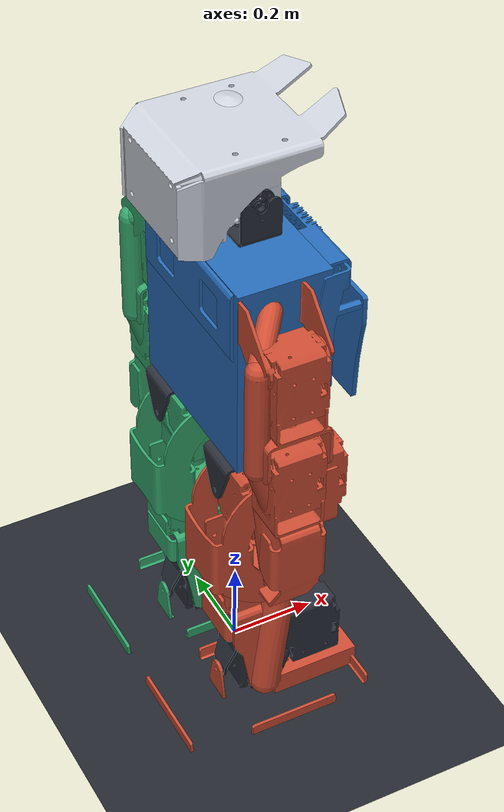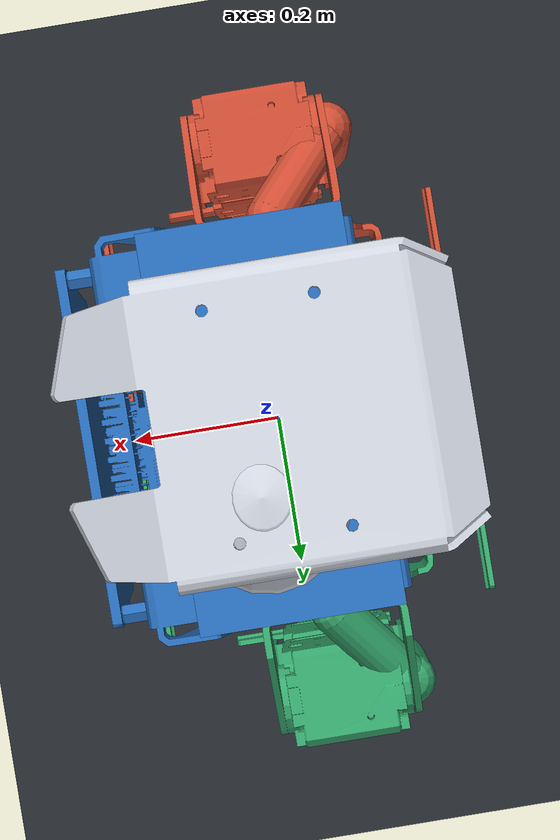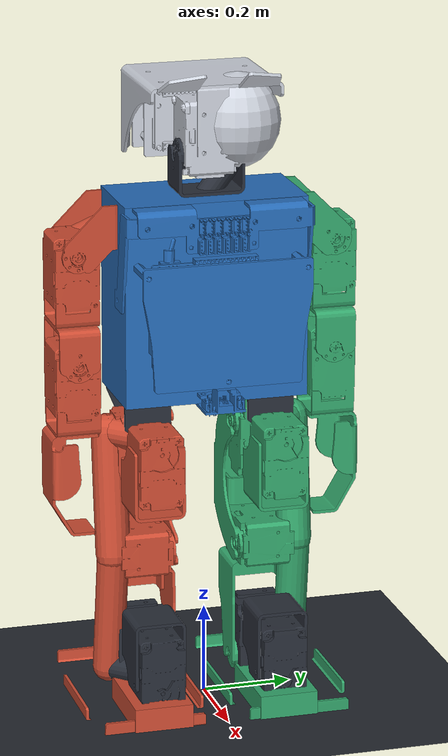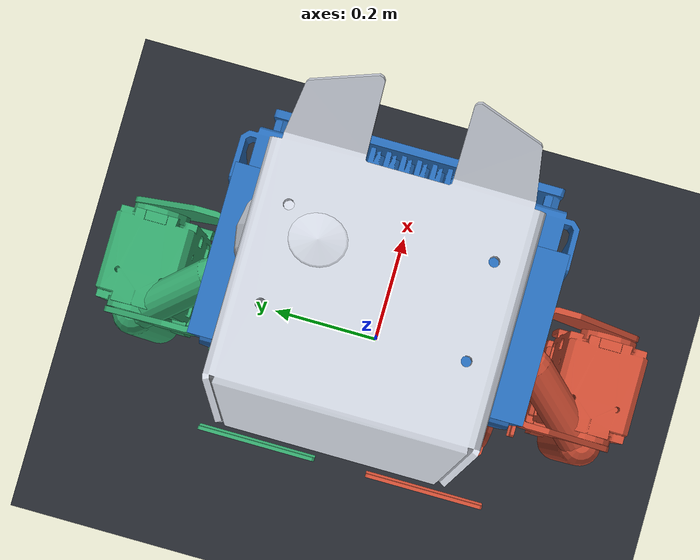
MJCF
<mujoco model="humanoid_v4_grounded_fixed">
  <compiler angle="degree" autolimits="true" coordinate="local"
            meshdir="meshes" inertiagrouprange="2 2"/>
  <option timestep="0.002" integrator="implicitfast" solver="Newton" iterations="80"
          gravity="0 0 -9.81" cone="elliptic"/>
  <include file="robot.xml"/>

  <worldbody>
    <body name="standing_carriage">
      <joint name="standing_vertical" type="slide" axis="0 0 1" limited="false" damping="0.1"/>
      <inertial pos="0 0 0" mass="0.000001"
                diaginertia="0.000000001 0.000000001 0.000000001"/>
    </body>
  </worldbody>

  <equality>
    <weld name="fixed_base" body1="torso" body2="standing_carriage"
          solref="0.002 1" solimp="0.99 0.999 0.0001"/>
  </equality>
</mujoco>

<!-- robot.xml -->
<mujocoinclude>
  <statistic center="0 0 0.65" extent="1.5"/>

  <visual>
    <headlight ambient="0.35 0.35 0.35" diffuse="0.75 0.75 0.75" specular="0.2 0.2 0.2"/>
    <rgba haze="0.15 0.18 0.22 1"/>
    <global azimuth="130" elevation="-18"/>
  </visual>

  <asset>
    <texture name="ground_tex" type="2d" builtin="checker" width="512" height="512"
             rgb1="0.18 0.20 0.23" rgb2="0.10 0.11 0.13"/>
    <material name="ground_mat" texture="ground_tex" texrepeat="4 4" reflectance="0.08"/>
    <material name="torso_mat" rgba="0.15 0.42 0.72 1"/>
    <material name="right_mat" rgba="0.80 0.30 0.20 1"/>
    <material name="left_mat" rgba="0.20 0.65 0.42 1"/>
    <material name="joint_mat" rgba="0.16 0.18 0.22 1"/>
    <material name="head_mat" rgba="0.80 0.82 0.86 1"/>

    <!-- Unity FBX geometry converted once to MuJoCo-supported Wavefront OBJ. -->
    <mesh name="torso_mesh" file="torso.obj" smoothnormal="true"/>
    <mesh name="shoulder_rh_mesh" file="shoulder_rh.obj" smoothnormal="true"/>
    <mesh name="elbow_rh_mesh" file="elbow_rh.obj" smoothnormal="true"/>
    <mesh name="wrist_rh_mesh" file="wrist_rh.obj" smoothnormal="true"/>
    <mesh name="shoulder_lh_mesh" file="shoulder_lh.obj" smoothnormal="true"/>
    <mesh name="elbow_lh_mesh" file="elbow_lh.obj" smoothnormal="true"/>
    <mesh name="wrist_lh_mesh" file="wrist_lh.obj" smoothnormal="true"/>
    <mesh name="rotat_axis_rl_mesh" file="rotat_axis_rl.obj" smoothnormal="true"/>
    <mesh name="motors_thigh_rl_mesh" file="motors_thigh_rl.obj" smoothnormal="true"/>
    <mesh name="knee_rl_mesh" file="knee_rl.obj" smoothnormal="true"/>
    <mesh name="shin_rl_mesh" file="shin_rl.obj" smoothnormal="true"/>
    <mesh name="motors_feet_rl_mesh" file="motors_feet_rl.obj" smoothnormal="true"/>
    <mesh name="foot_rl_mesh" file="foot_rl.obj" smoothnormal="true"/>
    <mesh name="rotat_axis_ll_mesh" file="rotat_axis_ll.obj" smoothnormal="true"/>
    <mesh name="motors_thigh_ll_mesh" file="motors_thigh_ll.obj" smoothnormal="true"/>
    <mesh name="knee_ll_mesh" file="knee_ll.obj" smoothnormal="true"/>
    <mesh name="shin_ll_mesh" file="shin_ll.obj" smoothnormal="true"/>
    <mesh name="motors_feet_ll_mesh" file="motors_feet_ll.obj" smoothnormal="true"/>
    <mesh name="foot_ll_mesh" file="foot_ll.obj" smoothnormal="true"/>
    <mesh name="neck_mesh" file="neck.obj" smoothnormal="true"/>
    <mesh name="head_mesh" file="head.obj" smoothnormal="true"/>
  </asset>

  <default>
    <joint limited="true" damping="0.045" armature="0.001" frictionloss="0.002"/>
    <!-- Group 2 is the physical proxy; group 1 below is visual-only OBJ. -->
    <geom group="2" condim="3" friction="0.9 0.02 0.001"
          solref="0.004 1" solimp="0.95 0.99 0.001"/>
    <position ctrllimited="true" forcelimited="true" kp="20" kv="1.5"/>
  </default>

  <worldbody>
    <light name="key_light" pos="1.5 -1.5 2.5" dir="-0.4 0.4 -1" directional="true"/>
    <geom name="ground" type="plane" pos="0 0 0" size="3 3 0.05" material="ground_mat" group="0"
          friction="1.0 0.02 0.002" mass="0"/>
    <camera name="overview" pos="2.2 -2.2 1.5" xyaxes="0.707 0.707 0 -0.28 0.28 0.92"/>

    <body name="torso" pos="0 0 0.939255">
      <freejoint name="base_free"/>
      <geom name="torso_visual" type="mesh" mesh="torso_mesh" pos="0 0 -0.9275"
            mass="0" contype="0" conaffinity="0" group="1" material="torso_mat"/>
      <geom name="torso_geom" type="box" pos="0 0 0" size="0.105 0.205 0.225"
            mass="1.0" material="torso_mat"/>
      <site name="imu_site" pos="0 0 0.12" size="0.012" rgba="1 0.8 0.1 1"/>

      <!-- Right arm. Local positions are differences of converted Unity anchors. -->
      <body name="shoulder_rh" pos="-0.0315 -0.203 0.16695">
        <joint name="shoulder_rh" axis="0 1 0" range="-180 180"/>
        <geom name="shoulder_rh_visual" type="mesh" mesh="shoulder_rh_mesh"
              pos="0.0315 0.203 -1.09445" mass="0" contype="0" conaffinity="0"
              group="1" material="right_mat"/>
        <geom name="shoulder_rh_geom" type="capsule" fromto="0 0 0 -0.0735 -0.0875 -0.063"
              size="0.024" mass="0.0107" material="right_mat"/>
        <body name="elbow_rh" pos="-0.0735 -0.0875 -0.063">
          <joint name="elbow_rh" axis="-1 0 0" range="-50 160"/>
          <geom name="elbow_rh_visual" type="mesh" mesh="elbow_rh_mesh"
                pos="0.105 0.2905 -1.03145" mass="0" contype="0" conaffinity="0"
                group="1" material="right_mat"/>
          <geom name="elbow_rh_geom" type="capsule" fromto="0 0 0 0 0 -0.24675"
                size="0.027" mass="0.0886" material="right_mat"/>
          <body name="wrist_rh" pos="0 0 -0.24675">
            <joint name="wrist_rh" axis="1 0 0" range="-90 90"/>
            <geom name="wrist_rh_visual" type="mesh" mesh="wrist_rh_mesh"
                  pos="0.105 0.2905 -0.7847" mass="0" contype="0" conaffinity="0"
                  group="1" material="right_mat"/>
            <geom name="wrist_rh_geom" type="capsule" fromto="0 0 0 0.035 0 -0.105"
                  size="0.025" mass="0.0921" material="right_mat"/>
          </body>
        </body>
      </body>

      <!-- Left arm. -->
      <body name="shoulder_lh" pos="-0.0315 0.203 0.16695">
        <joint name="shoulder_lh" axis="0 1 0" range="-180 180"/>
        <geom name="shoulder_lh_visual" type="mesh" mesh="shoulder_lh_mesh"
              pos="0.0315 -0.203 -1.09445" mass="0" contype="0" conaffinity="0"
              group="1" material="left_mat"/>
        <geom name="shoulder_lh_geom" type="capsule" fromto="0 0 0 -0.0665 0.0875 -0.063"
              size="0.024" mass="0.0107" material="left_mat"/>
        <body name="elbow_lh" pos="-0.0665 0.0875 -0.063">
          <joint name="elbow_lh" axis="1 0 0" range="-50 160"/>
          <geom name="elbow_lh_visual" type="mesh" mesh="elbow_lh_mesh"
                pos="0.098 -0.2905 -1.03145" mass="0" contype="0" conaffinity="0"
                group="1" material="left_mat"/>
          <geom name="elbow_lh_geom" type="capsule" fromto="0 0 0 0 0 -0.24675"
                size="0.027" mass="0.0921" material="left_mat"/>
          <body name="wrist_lh" pos="0 0 -0.24675">
            <joint name="wrist_lh" axis="-1 0 0" range="-90 90"/>
            <geom name="wrist_lh_visual" type="mesh" mesh="wrist_lh_mesh"
                  pos="0.098 -0.2905 -0.7847" mass="0" contype="0" conaffinity="0"
                  group="1" material="left_mat"/>
            <geom name="wrist_lh_geom" type="capsule" fromto="0 0 0 0.035 0 -0.105"
                  size="0.025" mass="0.0921" material="left_mat"/>
          </body>
        </body>
      </body>

      <!-- Right leg: hip yaw -> hip roll -> hip pitch -> knee -> ankle pitch -> ankle roll. -->
      <body name="rotat_axis_rl" pos="-0.035 -0.14 -0.2275">
        <joint name="rotat_axis_rl" axis="0 0 1" range="-40 40" damping="0.08" armature="0.003"/>
        <geom name="rotat_axis_rl_visual" type="mesh" mesh="rotat_axis_rl_mesh"
              pos="0.035 0.14 -0.7" mass="0" contype="0" conaffinity="0"
              group="1" material="joint_mat"/>
        <geom name="rotat_axis_rl_geom" type="capsule" fromto="0 0 0 0.0735 0 -0.08855"
              size="0.027" mass="0.0142" material="joint_mat"/>
        <body name="motors_thigh_rl" pos="0.0735 0 -0.08855">
          <joint name="motors_thigh_rl" axis="-1 0 0" range="-40 40" damping="0.08" armature="0.003"/>
          <geom name="motors_thigh_rl_visual" type="mesh" mesh="motors_thigh_rl_mesh"
                pos="-0.0385 0.14 -0.61145" mass="0" contype="0" conaffinity="0"
                group="1" material="right_mat"/>
          <geom name="motors_thigh_rl_geom" type="capsule" fromto="0 0 0 -0.0735 -0.07 0"
                size="0.034" mass="0.143017" material="right_mat"/>
          <body name="knee_rl" pos="-0.0735 -0.07 0">
            <joint name="knee_rl" axis="0 1 0" range="-30 90" damping="0.10" armature="0.004"/>
            <geom name="knee_rl_visual" type="mesh" mesh="knee_rl_mesh"
                  pos="0.035 0.21 -0.61145" mass="0" contype="0" conaffinity="0"
                  group="1" material="right_mat"/>
            <geom name="knee_rl_geom" type="capsule" fromto="0 0 0 0.035 0 -0.2779"
                  size="0.039" mass="0.0334" material="right_mat"/>
            <body name="shin_rl" pos="0.035 0 -0.2779">
              <joint name="shin_rl" axis="0 -1 0" range="-10 150" damping="0.10" armature="0.004"/>
              <geom name="shin_rl_visual" type="mesh" mesh="shin_rl_mesh"
                    pos="0 0.21 -0.33355" mass="0" contype="0" conaffinity="0"
                    group="1" material="right_mat"/>
              <geom name="shin_rl_geom" type="capsule" fromto="0 0 0 -0.035 -0.0035 -0.27755"
                    size="0.036" mass="0.0972" material="right_mat"/>
              <body name="motors_feet_rl" pos="-0.035 -0.0035 -0.27755">
                <joint name="motors_feet_rl" axis="0 1 0" range="-75 75" damping="0.10" armature="0.004"/>
                <geom name="motors_feet_rl_visual" type="mesh" mesh="motors_feet_rl_mesh"
                      pos="0.035 0.2135 -0.056" mass="0" contype="0" conaffinity="0"
                      group="1" material="joint_mat"/>
                <geom name="motors_feet_rl_geom" type="capsule" fromto="0 0 0 0.0735 0.0665 0.0035"
                      size="0.030" mass="0.142" material="joint_mat"/>
                <body name="foot_rl" pos="0.0735 0.0665 0.0035">
                  <joint name="foot_rl" axis="-1 0 0" range="-60 45" damping="0.10" armature="0.004"/>
                  <geom name="foot_rl_visual" type="mesh" mesh="foot_rl_mesh"
                        pos="-0.0385 0.147 -0.0595" mass="0" contype="0" conaffinity="0"
                        group="1" material="right_mat"/>
                  <!-- Sole proxy aligned to the lowest imported foot vertices. -->
                  <geom name="foot_rl_geom" type="box" pos="0.060 0 -0.04955" size="0.105 0.066 0.030"
                        mass="0.2" material="right_mat" friction="1.1 0.02 0.002"/>
                  <site name="right_foot_contact" pos="0.060 0 -0.07955" size="0.008" rgba="1 0.8 0.1 1"/>
                </body>
              </body>
            </body>
          </body>
        </body>
      </body>

      <!-- Left leg. -->
      <body name="rotat_axis_ll" pos="-0.035 0.14 -0.2275">
        <joint name="rotat_axis_ll" axis="0 0 -1" range="-40 40" damping="0.08" armature="0.003"/>
        <geom name="rotat_axis_ll_visual" type="mesh" mesh="rotat_axis_ll_mesh"
              pos="0.035 -0.14 -0.7" mass="0" contype="0" conaffinity="0"
              group="1" material="joint_mat"/>
        <geom name="rotat_axis_ll_geom" type="capsule" fromto="0 0 0 0.0742 0 -0.08855"
              size="0.027" mass="0.0142" material="joint_mat"/>
        <body name="motors_thigh_ll" pos="0.0742 0 -0.08855">
          <joint name="motors_thigh_ll" axis="1 0 0" range="-40 40" damping="0.08" armature="0.003"/>
          <geom name="motors_thigh_ll_visual" type="mesh" mesh="motors_thigh_ll_mesh"
                pos="-0.0392 -0.14 -0.61145" mass="0" contype="0" conaffinity="0"
                group="1" material="left_mat"/>
          <geom name="motors_thigh_ll_geom" type="capsule" fromto="0 0 0 -0.0742 0.07 0"
                size="0.034" mass="0.143017" material="left_mat"/>
          <body name="knee_ll" pos="-0.0742 0.07 0">
            <joint name="knee_ll" axis="0 1 0" range="-30 90" damping="0.10" armature="0.004"/>
            <geom name="knee_ll_visual" type="mesh" mesh="knee_ll_mesh"
                  pos="0.035 -0.21 -0.61145" mass="0" contype="0" conaffinity="0"
                  group="1" material="left_mat"/>
            <geom name="knee_ll_geom" type="capsule" fromto="0 0 0 0.035 0 -0.2779"
                  size="0.039" mass="0.0334" material="left_mat"/>
            <body name="shin_ll" pos="0.035 0 -0.2779">
              <joint name="shin_ll" axis="0 -1 0" range="-10 150" damping="0.10" armature="0.004"/>
              <geom name="shin_ll_visual" type="mesh" mesh="shin_ll_mesh"
                    pos="0 -0.21 -0.33355" mass="0" contype="0" conaffinity="0"
                    group="1" material="left_mat"/>
              <geom name="shin_ll_geom" type="capsule" fromto="0 0 0 -0.035 0 -0.27755"
                    size="0.036" mass="0.0972" material="left_mat"/>
              <body name="motors_feet_ll" pos="-0.035 0 -0.27755">
                <joint name="motors_feet_ll" axis="0 1 0" range="-75 75" damping="0.10" armature="0.004"/>
                <geom name="motors_feet_ll_visual" type="mesh" mesh="motors_feet_ll_mesh"
                      pos="0.035 -0.21 -0.056" mass="0" contype="0" conaffinity="0"
                      group="1" material="joint_mat"/>
                <geom name="motors_feet_ll_geom" type="capsule" fromto="0 0 0 0.0735 -0.07 0"
                      size="0.030" mass="0.142" material="joint_mat"/>
                <body name="foot_ll" pos="0.0735 -0.07 0">
                  <joint name="foot_ll" axis="1 0 0" range="-60 45" damping="0.10" armature="0.004"/>
                  <geom name="foot_ll_visual" type="mesh" mesh="foot_ll_mesh"
                        pos="-0.0385 -0.14 -0.056" mass="0" contype="0" conaffinity="0"
                        group="1" material="left_mat"/>
                  <!-- Left/right offsets differ because the Unity anchors are asymmetric. -->
                  <geom name="foot_ll_geom" type="box" pos="0.060 0 -0.04613" size="0.105 0.066 0.030"
                        mass="0.2" material="left_mat" friction="1.1 0.02 0.002"/>
                  <site name="left_foot_contact" pos="0.060 0 -0.07613" size="0.008" rgba="1 0.8 0.1 1"/>
                </body>
              </body>
            </body>
          </body>
        </body>
      </body>

      <!-- Neck and head. -->
      <body name="neck" pos="0.0168 0 0.2205">
        <joint name="neck" axis="0 0 -1" range="-180 180"/>
        <geom name="neck_visual" type="mesh" mesh="neck_mesh"
              pos="-0.0168 0 -1.148" mass="0" contype="0" conaffinity="0"
              group="1" material="joint_mat"/>
        <geom name="neck_geom" type="capsule" fromto="0 0 0 -0.000035 0.07 0.09205"
              size="0.026" mass="0.0107" material="joint_mat"/>
        <body name="head" pos="-0.000035 0.07 0.09205">
          <joint name="head" axis="0 1 0" range="-25 70"/>
          <geom name="head_visual" type="mesh" mesh="head_mesh"
                pos="-0.016765 -0.07 -1.24005" mass="0" contype="0" conaffinity="0"
                group="1" material="head_mat"/>
          <geom name="head_geom" type="ellipsoid" pos="0 0 0.070" size="0.085 0.095 0.105"
                mass="0.2765" material="head_mat"/>
        </body>
      </body>
    </body>
  </worldbody>

  <contact>
    <exclude name="right_ankle_internal" body1="shin_rl" body2="foot_rl"/>
    <exclude name="left_ankle_internal" body1="shin_ll" body2="foot_ll"/>
  </contact>

  <!-- Actuator order is the legacy WebSocket/Unity order, independent of qpos order. -->
  <actuator>
    <position name="shoulder_rh" joint="shoulder_rh" kp="16" kv="1.1" ctrlrange="-3.141592654 3.141592654" forcerange="-4 4"/>
    <position name="shoulder_lh" joint="shoulder_lh" kp="16" kv="1.1" ctrlrange="-3.141592654 3.141592654" forcerange="-4 4"/>
    <position name="elbow_rh" joint="elbow_rh" kp="14" kv="1.0" ctrlrange="-0.872664626 2.792526803" forcerange="-3 3"/>
    <position name="elbow_lh" joint="elbow_lh" kp="14" kv="1.0" ctrlrange="-0.872664626 2.792526803" forcerange="-3 3"/>
    <position name="wrist_rh" joint="wrist_rh" kp="10" kv="0.8" ctrlrange="-1.570796327 1.570796327" forcerange="-2 2"/>
    <position name="wrist_lh" joint="wrist_lh" kp="10" kv="0.8" ctrlrange="-1.570796327 1.570796327" forcerange="-2 2"/>
    <position name="rotat_axis_rl" joint="rotat_axis_rl" kp="38" kv="3.0" ctrlrange="-0.698131701 0.698131701" forcerange="-10 10"/>
    <position name="rotat_axis_ll" joint="rotat_axis_ll" kp="38" kv="3.0" ctrlrange="-0.698131701 0.698131701" forcerange="-10 10"/>
    <position name="motors_thigh_rl" joint="motors_thigh_rl" kp="42" kv="3.2" ctrlrange="-0.698131701 0.698131701" forcerange="-12 12"/>
    <position name="motors_thigh_ll" joint="motors_thigh_ll" kp="42" kv="3.2" ctrlrange="-0.698131701 0.698131701" forcerange="-12 12"/>
    <position name="knee_rl" joint="knee_rl" kp="48" kv="3.6" ctrlrange="-0.523598776 1.570796327" forcerange="-14 14"/>
    <position name="knee_ll" joint="knee_ll" kp="48" kv="3.6" ctrlrange="-0.523598776 1.570796327" forcerange="-14 14"/>
    <position name="shin_rl" joint="shin_rl" kp="48" kv="3.6" ctrlrange="-0.174532925 2.617993878" forcerange="-14 14"/>
    <position name="shin_ll" joint="shin_ll" kp="48" kv="3.6" ctrlrange="-0.174532925 2.617993878" forcerange="-14 14"/>
    <position name="motors_feet_rl" joint="motors_feet_rl" kp="42" kv="3.2" ctrlrange="-1.308996939 1.308996939" forcerange="-12 12"/>
    <position name="motors_feet_ll" joint="motors_feet_ll" kp="42" kv="3.2" ctrlrange="-1.308996939 1.308996939" forcerange="-12 12"/>
    <position name="foot_rl" joint="foot_rl" kp="36" kv="2.8" ctrlrange="-1.047197551 0.785398163" forcerange="-10 10"/>
    <position name="foot_ll" joint="foot_ll" kp="36" kv="2.8" ctrlrange="-1.047197551 0.785398163" forcerange="-10 10"/>
    <position name="neck" joint="neck" kp="8" kv="0.6" ctrlrange="-3.141592654 3.141592654" forcerange="-2 2"/>
    <position name="head" joint="head" kp="8" kv="0.6" ctrlrange="-0.436332313 1.221730476" forcerange="-2 2"/>
  </actuator>

  <sensor>
    <framequat name="base_orientation" objtype="body" objname="torso"/>
    <gyro name="base_gyro" site="imu_site"/>
    <accelerometer name="base_accelerometer" site="imu_site"/>
    <framepos name="right_foot_position" objtype="site" objname="right_foot_contact"/>
    <framepos name="left_foot_position" objtype="site" objname="left_foot_contact"/>
  </sensor>
</mujocoinclude>
